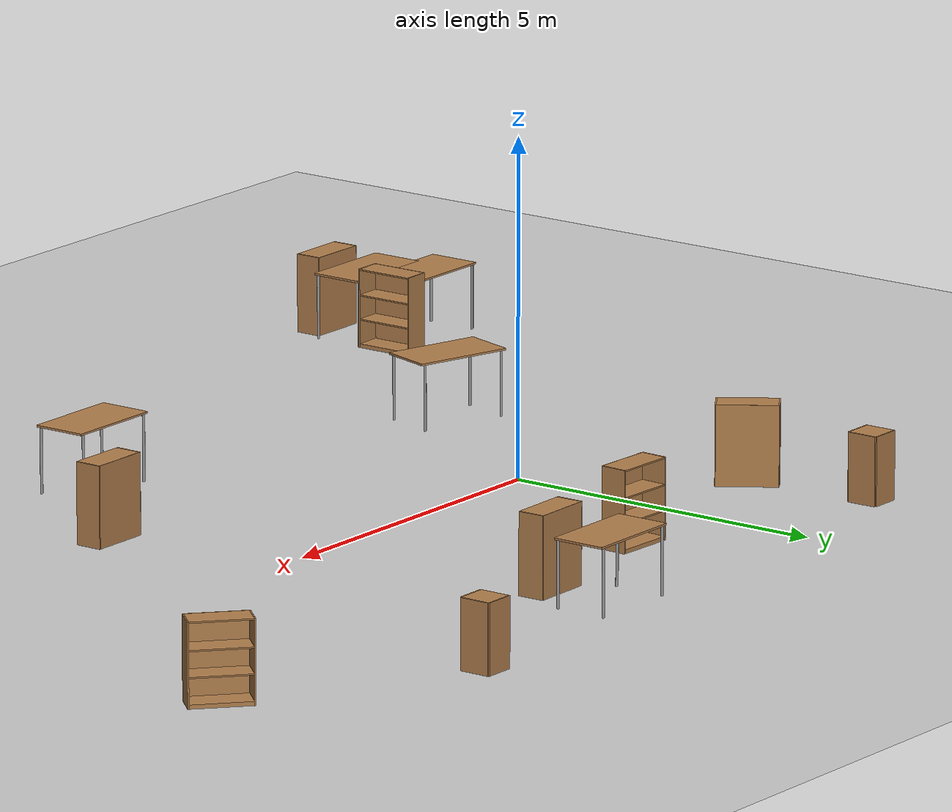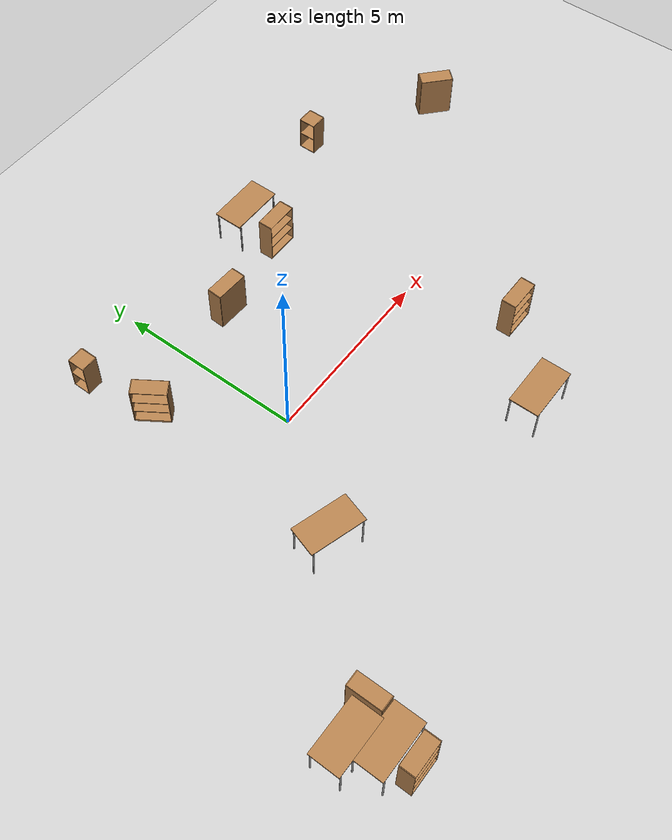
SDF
<sdf version="1.6">
 <world name="default">
  <light name="sun" type="directional">
   <cast_shadows>0</cast_shadows>
   <pose>0 0 10 0 -0 0</pose>
   <diffuse>0.8 0.8 0.8 1</diffuse>
   <specular>0.1 0.1 0.1 1</specular>
   <attenuation>
    <range>1000</range>
    <constant>0.9</constant>
    <linear>0.01</linear>
    <quadratic>0.001</quadratic>
   </attenuation>
   <direction>-0.5 0.5 -1</direction>
  </light>
  <model name="ground_plane">
   <static>1</static>
   <link name="link">
    <collision name="collision">
     <geometry><plane><normal>0 0 1</normal><size>100 100</size></plane></geometry>
     <surface><friction><ode><mu>100</mu><mu2>50</mu2></ode></friction></surface>
    </collision>
    <visual name="visual">
     <cast_shadows>0</cast_shadows>
     <geometry><plane><normal>0 0 1</normal><size>100 100</size></plane></geometry>
     <material>
      <script><uri>file://media/materials/scripts/gazebo.material</uri><name>Gazebo/Grey</name></script>
     </material>
    </visual>
   </link>
  </model>
  <gravity>0 0 -9.8</gravity>
  <magnetic_field>6e-06 2.3e-05 -4.2e-05</magnetic_field>
  <atmosphere type="adiabatic"/>
  <physics name="default_physics" default="0" type="ode">
   <max_step_size>0.001</max_step_size>
   <real_time_factor>1</real_time_factor>
   <real_time_update_rate>1000</real_time_update_rate>
  </physics>
  <scene><ambient>0.4 0.4 0.4 1</ambient><background>0.7 0.7 0.7 1</background><shadows>1</shadows></scene>
  <spherical_coordinates>
   <surface_model>EARTH_WGS84</surface_model>
   <latitude_deg>0</latitude_deg>
   <longitude_deg>0</longitude_deg>
   <elevation>0</elevation>
   <heading_deg>0</heading_deg>
  </spherical_coordinates>
  <model name="cabinet">
   <static>1</static>
   <link name="cabinet_bottom_plate">
    <inertial>
     <pose>0 0 -1 0 -0 0</pose>
     <inertia><ixx>2.05</ixx><ixy>0</ixy><ixz>0</ixz><iyy>2.05</iyy><iyz>0</iyz><izz>2.05</izz></inertia>
     <mass>25</mass>
    </inertial>
    <collision name="cabinet_bottom_plate_geom">
     <pose>0 0 0.01 0 -0 0</pose>
     <geometry><box><size>0.45 0.45 0.02</size></box></geometry>
    </collision>
    <visual name="cabinet_bottom_plate_geom_visual">
     <pose>0 0 0.01 0 -0 0</pose>
     <geometry><box><size>0.45 0.45 0.02</size></box></geometry>
     <material>
      <script><uri>file://media/materials/scripts/gazebo.material</uri><name>Gazebo/Wood</name></script>
     </material>
    </visual>
    <collision name="cabinet_bottom_plate_geom_cabinet_back_plate">
     <pose>0.235 0 0.51 0 -0 0</pose>
     <geometry><box><size>0.02 0.45 1.02</size></box></geometry>
    </collision>
    <visual name="cabinet_bottom_plate_geom_cabinet_back_plate_visual">
     <pose>0.235 0 0.51 0 -0 0</pose>
     <geometry><box><size>0.02 0.45 1.02</size></box></geometry>
     <material>
      <script><uri>file://media/materials/scripts/gazebo.material</uri><name>Gazebo/Wood</name></script>
     </material>
    </visual>
    <collision name="cabinet_bottom_plate_geom_cabinet_left_plate">
     <pose>0 0.235 0.51 0 -0 0</pose>
     <geometry><box><size>0.45 0.02 1.02</size></box></geometry>
    </collision>
    <visual name="cabinet_bottom_plate_geom_cabinet_left_plate_visual">
     <pose>0 0.235 0.51 0 -0 0</pose>
     <geometry><box><size>0.45 0.02 1.02</size></box></geometry>
     <material>
      <script><uri>file://media/materials/scripts/gazebo.material</uri><name>Gazebo/Wood</name></script>
     </material>
    </visual>
    <collision name="cabinet_bottom_plate_geom_cabinet_middle_plate">
     <pose>0 0 0.51 0 -0 0</pose>
     <geometry><box><size>0.45 0.45 0.02</size></box></geometry>
    </collision>
    <visual name="cabinet_bottom_plate_geom_cabinet_middle_plate_visual">
     <pose>0 0 0.51 0 -0 0</pose>
     <geometry><box><size>0.45 0.45 0.02</size></box></geometry>
     <material>
      <script><uri>file://media/materials/scripts/gazebo.material</uri><name>Gazebo/Wood</name></script>
     </material>
    </visual>
    <collision name="cabinet_bottom_plate_geom_cabinet_right_plate">
     <pose>0 -0.235 0.51 0 -0 0</pose>
     <geometry><box><size>0.45 0.02 1.02</size></box></geometry>
    </collision>
    <visual name="cabinet_bottom_plate_geom_cabinet_right_plate_visual">
     <pose>0 -0.235 0.51 0 -0 0</pose>
     <geometry><box><size>0.45 0.02 1.02</size></box></geometry>
     <material>
      <script><uri>file://media/materials/scripts/gazebo.material</uri><name>Gazebo/Wood</name></script>
     </material>
    </visual>
    <collision name="cabinet_bottom_plate_geom_cabinet_top_plate">
     <pose>0 0 1.01 0 -0 0</pose>
     <geometry><box><size>0.45 0.45 0.02</size></box></geometry>
    </collision>
    <visual name="cabinet_bottom_plate_geom_cabinet_top_plate_visual">
     <pose>0 0 1.01 0 -0 0</pose>
     <geometry><box><size>0.45 0.45 0.02</size></box></geometry>
     <material>
      <script><uri>file://media/materials/scripts/gazebo.material</uri><name>Gazebo/Wood</name></script>
     </material>
    </visual>
   </link>
   <pose>-2.09022 4.62939 0 0 -0 0</pose>
  </model>
  <model name="bookshelf">
   <static>1</static>
   <link name="link">
    <inertial><mass>1</mass></inertial>
    <collision name="back">
     <pose>0 0.005 0.6 0 -0 0</pose>
     <geometry><box><size>0.9 0.01 1.2</size></box></geometry>
    </collision>
    <visual name="visual1">
     <pose>0 0.005 0.6 0 -0 0</pose>
     <geometry><box><size>0.9 0.01 1.2</size></box></geometry>
     <material>
      <script><uri>file://media/materials/scripts/gazebo.material</uri><name>Gazebo/Wood</name></script>
     </material>
    </visual>
    <collision name="left_side">
     <pose>0.45 -0.195 0.6 0 -0 0</pose>
     <geometry><box><size>0.02 0.4 1.2</size></box></geometry>
    </collision>
    <visual name="visual2">
     <pose>0.45 -0.195 0.6 0 -0 0</pose>
     <geometry><box><size>0.02 0.4 1.2</size></box></geometry>
     <material>
      <script><uri>file://media/materials/scripts/gazebo.material</uri><name>Gazebo/Wood</name></script>
     </material>
    </visual>
    <collision name="right_side">
     <pose>-0.45 -0.195 0.6 0 -0 0</pose>
     <geometry><box><size>0.02 0.4 1.2</size></box></geometry>
    </collision>
    <visual name="visual3">
     <pose>-0.45 -0.195 0.6 0 -0 0</pose>
     <geometry><box><size>0.02 0.4 1.2</size></box></geometry>
     <material>
      <script><uri>file://media/materials/scripts/gazebo.material</uri><name>Gazebo/Wood</name></script>
     </material>
    </visual>
    <collision name="bottom">
     <pose>0 -0.195 0.03 0 -0 0</pose>
     <geometry><box><size>0.88 0.4 0.06</size></box></geometry>
    </collision>
    <visual name="visual4">
     <pose>0 -0.195 0.03 0 -0 0</pose>
     <geometry><box><size>0.88 0.4 0.06</size></box></geometry>
     <material>
      <script><uri>file://media/materials/scripts/gazebo.material</uri><name>Gazebo/Wood</name></script>
     </material>
    </visual>
    <collision name="top">
     <pose>0 -0.195 1.19 0 -0 0</pose>
     <geometry><box><size>0.88 0.4 0.02</size></box></geometry>
    </collision>
    <visual name="visual5">
     <pose>0 -0.195 1.19 0 -0 0</pose>
     <geometry><box><size>0.88 0.4 0.02</size></box></geometry>
     <material>
      <script><uri>file://media/materials/scripts/gazebo.material</uri><name>Gazebo/Wood</name></script>
     </material>
    </visual>
    <collision name="low_shelf">
     <pose>0 -0.195 0.43 0 -0 0</pose>
     <geometry><box><size>0.88 0.4 0.02</size></box></geometry>
    </collision>
    <visual name="visual6">
     <pose>0 -0.195 0.43 0 -0 0</pose>
     <geometry><box><size>0.88 0.4 0.02</size></box></geometry>
     <material>
      <script><uri>file://media/materials/scripts/gazebo.material</uri><name>Gazebo/Wood</name></script>
     </material>
    </visual>
    <collision name="high_shelf">
     <pose>0 -0.195 0.8 0 -0 0</pose>
     <geometry><box><size>0.88 0.4 0.02</size></box></geometry>
    </collision>
    <visual name="visual7">
     <pose>0 -0.195 0.8 0 -0 0</pose>
     <geometry><box><size>0.88 0.4 0.02</size></box></geometry>
     <material>
      <script><uri>file://media/materials/scripts/gazebo.material</uri><name>Gazebo/Wood</name></script>
     </material>
    </visual>
   </link>
   <pose>5.88793 -2.5165 0 0 -0 0</pose>
  </model>
  <model name="bookshelf_0">
   <static>1</static>
   <link name="link">
    <inertial><mass>1</mass></inertial>
    <collision name="back">
     <pose>0 0.005 0.6 0 -0 0</pose>
     <geometry><box><size>0.9 0.01 1.2</size></box></geometry>
    </collision>
    <visual name="visual1">
     <pose>0 0.005 0.6 0 -0 0</pose>
     <geometry><box><size>0.9 0.01 1.2</size></box></geometry>
     <material>
      <script><uri>file://media/materials/scripts/gazebo.material</uri><name>Gazebo/Wood</name></script>
     </material>
    </visual>
    <collision name="left_side">
     <pose>0.45 -0.195 0.6 0 -0 0</pose>
     <geometry><box><size>0.02 0.4 1.2</size></box></geometry>
    </collision>
    <visual name="visual2">
     <pose>0.45 -0.195 0.6 0 -0 0</pose>
     <geometry><box><size>0.02 0.4 1.2</size></box></geometry>
     <material>
      <script><uri>file://media/materials/scripts/gazebo.material</uri><name>Gazebo/Wood</name></script>
     </material>
    </visual>
    <collision name="right_side">
     <pose>-0.45 -0.195 0.6 0 -0 0</pose>
     <geometry><box><size>0.02 0.4 1.2</size></box></geometry>
    </collision>
    <visual name="visual3">
     <pose>-0.45 -0.195 0.6 0 -0 0</pose>
     <geometry><box><size>0.02 0.4 1.2</size></box></geometry>
     <material>
      <script><uri>file://media/materials/scripts/gazebo.material</uri><name>Gazebo/Wood</name></script>
     </material>
    </visual>
    <collision name="bottom">
     <pose>0 -0.195 0.03 0 -0 0</pose>
     <geometry><box><size>0.88 0.4 0.06</size></box></geometry>
    </collision>
    <visual name="visual4">
     <pose>0 -0.195 0.03 0 -0 0</pose>
     <geometry><box><size>0.88 0.4 0.06</size></box></geometry>
     <material>
      <script><uri>file://media/materials/scripts/gazebo.material</uri><name>Gazebo/Wood</name></script>
     </material>
    </visual>
    <collision name="top">
     <pose>0 -0.195 1.19 0 -0 0</pose>
     <geometry><box><size>0.88 0.4 0.02</size></box></geometry>
    </collision>
    <visual name="visual5">
     <pose>0 -0.195 1.19 0 -0 0</pose>
     <geometry><box><size>0.88 0.4 0.02</size></box></geometry>
     <material>
      <script><uri>file://media/materials/scripts/gazebo.material</uri><name>Gazebo/Wood</name></script>
     </material>
    </visual>
    <collision name="low_shelf">
     <pose>0 -0.195 0.43 0 -0 0</pose>
     <geometry><box><size>0.88 0.4 0.02</size></box></geometry>
    </collision>
    <visual name="visual6">
     <pose>0 -0.195 0.43 0 -0 0</pose>
     <geometry><box><size>0.88 0.4 0.02</size></box></geometry>
     <material>
      <script><uri>file://media/materials/scripts/gazebo.material</uri><name>Gazebo/Wood</name></script>
     </material>
    </visual>
    <collision name="high_shelf">
     <pose>0 -0.195 0.8 0 -0 0</pose>
     <geometry><box><size>0.88 0.4 0.02</size></box></geometry>
    </collision>
    <visual name="visual7">
     <pose>0 -0.195 0.8 0 -0 0</pose>
     <geometry><box><size>0.88 0.4 0.02</size></box></geometry>
     <material>
      <script><uri>file://media/materials/scripts/gazebo.material</uri><name>Gazebo/Wood</name></script>
     </material>
    </visual>
   </link>
   <pose>10.9908 3.18056 0 0 -0 2.40643</pose>
  </model>
  <model name="cabinet_clone">
   <static>1</static>
   <link name="cabinet_bottom_plate">
    <inertial>
     <pose>0 0 -1 0 -0 0</pose>
     <inertia><ixx>2.05</ixx><ixy>0</ixy><ixz>0</ixz><iyy>2.05</iyy><iyz>0</iyz><izz>2.05</izz></inertia>
     <mass>25</mass>
    </inertial>
    <collision name="cabinet_bottom_plate_geom">
     <pose>0 0 0.01 0 -0 0</pose>
     <geometry><box><size>0.45 0.45 0.02</size></box></geometry>
    </collision>
    <visual name="cabinet_bottom_plate_geom_visual">
     <pose>0 0 0.01 0 -0 0</pose>
     <geometry><box><size>0.45 0.45 0.02</size></box></geometry>
     <material>
      <script><uri>file://media/materials/scripts/gazebo.material</uri><name>Gazebo/Wood</name></script>
     </material>
    </visual>
    <collision name="cabinet_bottom_plate_geom_cabinet_back_plate">
     <pose>0.235 0 0.51 0 -0 0</pose>
     <geometry><box><size>0.02 0.45 1.02</size></box></geometry>
    </collision>
    <visual name="cabinet_bottom_plate_geom_cabinet_back_plate_visual">
     <pose>0.235 0 0.51 0 -0 0</pose>
     <geometry><box><size>0.02 0.45 1.02</size></box></geometry>
     <material>
      <script><uri>file://media/materials/scripts/gazebo.material</uri><name>Gazebo/Wood</name></script>
     </material>
    </visual>
    <collision name="cabinet_bottom_plate_geom_cabinet_left_plate">
     <pose>0 0.235 0.51 0 -0 0</pose>
     <geometry><box><size>0.45 0.02 1.02</size></box></geometry>
    </collision>
    <visual name="cabinet_bottom_plate_geom_cabinet_left_plate_visual">
     <pose>0 0.235 0.51 0 -0 0</pose>
     <geometry><box><size>0.45 0.02 1.02</size></box></geometry>
     <material>
      <script><uri>file://media/materials/scripts/gazebo.material</uri><name>Gazebo/Wood</name></script>
     </material>
    </visual>
    <collision name="cabinet_bottom_plate_geom_cabinet_middle_plate">
     <pose>0 0 0.51 0 -0 0</pose>
     <geometry><box><size>0.45 0.45 0.02</size></box></geometry>
    </collision>
    <visual name="cabinet_bottom_plate_geom_cabinet_middle_plate_visual">
     <pose>0 0 0.51 0 -0 0</pose>
     <geometry><box><size>0.45 0.45 0.02</size></box></geometry>
     <material>
      <script><uri>file://media/materials/scripts/gazebo.material</uri><name>Gazebo/Wood</name></script>
     </material>
    </visual>
    <collision name="cabinet_bottom_plate_geom_cabinet_right_plate">
     <pose>0 -0.235 0.51 0 -0 0</pose>
     <geometry><box><size>0.45 0.02 1.02</size></box></geometry>
    </collision>
    <visual name="cabinet_bottom_plate_geom_cabinet_right_plate_visual">
     <pose>0 -0.235 0.51 0 -0 0</pose>
     <geometry><box><size>0.45 0.02 1.02</size></box></geometry>
     <material>
      <script><uri>file://media/materials/scripts/gazebo.material</uri><name>Gazebo/Wood</name></script>
     </material>
    </visual>
    <collision name="cabinet_bottom_plate_geom_cabinet_top_plate">
     <pose>0 0 1.01 0 -0 0</pose>
     <geometry><box><size>0.45 0.45 0.02</size></box></geometry>
    </collision>
    <visual name="cabinet_bottom_plate_geom_cabinet_top_plate_visual">
     <pose>0 0 1.01 0 -0 0</pose>
     <geometry><box><size>0.45 0.45 0.02</size></box></geometry>
     <material>
      <script><uri>file://media/materials/scripts/gazebo.material</uri><name>Gazebo/Wood</name></script>
     </material>
    </visual>
   </link>
   <pose>7.77888 5.21047 0 0 -0 0</pose>
  </model>
  <model name="table_1_clone">
   <static>1</static>
   <link name="link">
    <collision name="surface">
     <pose>0 0 1 0 -0 0</pose>
     <geometry><box><size>1.5 0.8 0.03</size></box></geometry>
     <surface><friction><ode><mu>0.6</mu><mu2>0.6</mu2></ode></friction></surface>
    </collision>
    <visual name="visual1">
     <pose>0 0 1 0 -0 0</pose>
     <geometry><box><size>1.5 0.8 0.03</size></box></geometry>
     <material>
      <script><uri>file://media/materials/scripts/gazebo.material</uri><name>Gazebo/Wood</name></script>
     </material>
    </visual>
    <collision name="front_left_leg">
     <pose>0.68 0.38 0.5 0 -0 0</pose>
     <geometry><cylinder><radius>0.02</radius><length>1</length></cylinder></geometry>
    </collision>
    <visual name="front_left_leg">
     <pose>0.68 0.38 0.5 0 -0 0</pose>
     <geometry><cylinder><radius>0.02</radius><length>1</length></cylinder></geometry>
     <material>
      <script><uri>file://media/materials/scripts/gazebo.material</uri><name>Gazebo/Grey</name></script>
     </material>
    </visual>
    <collision name="front_right_leg">
     <pose>0.68 -0.38 0.5 0 -0 0</pose>
     <geometry><cylinder><radius>0.02</radius><length>1</length></cylinder></geometry>
    </collision>
    <visual name="front_right_leg">
     <pose>0.68 -0.38 0.5 0 -0 0</pose>
     <geometry><cylinder><radius>0.02</radius><length>1</length></cylinder></geometry>
     <material>
      <script><uri>file://media/materials/scripts/gazebo.material</uri><name>Gazebo/Grey</name></script>
     </material>
    </visual>
    <collision name="back_right_leg">
     <pose>-0.68 -0.38 0.5 0 -0 0</pose>
     <geometry><cylinder><radius>0.02</radius><length>1</length></cylinder></geometry>
    </collision>
    <visual name="back_right_leg">
     <pose>-0.68 -0.38 0.5 0 -0 0</pose>
     <geometry><cylinder><radius>0.02</radius><length>1</length></cylinder></geometry>
     <material>
      <script><uri>file://media/materials/scripts/gazebo.material</uri><name>Gazebo/Grey</name></script>
     </material>
    </visual>
    <collision name="back_left_leg">
     <pose>-0.68 0.38 0.5 0 -0 0</pose>
     <geometry><cylinder><radius>0.02</radius><length>1</length></cylinder></geometry>
    </collision>
    <visual name="back_left_leg">
     <pose>-0.68 0.38 0.5 0 -0 0</pose>
     <geometry><cylinder><radius>0.02</radius><length>1</length></cylinder></geometry>
     <material>
      <script><uri>file://media/materials/scripts/gazebo.material</uri><name>Gazebo/Grey</name></script>
     </material>
    </visual>
   </link>
   <pose>4.19696 4.66615 0 0 -0 0</pose>
  </model>
  <model name="table_1_clone_0">
   <static>1</static>
   <link name="link">
    <collision name="surface">
     <pose>0 0 1 0 -0 0</pose>
     <geometry><box><size>1.5 0.8 0.03</size></box></geometry>
     <surface><friction><ode><mu>0.6</mu><mu2>0.6</mu2></ode></friction></surface>
    </collision>
    <visual name="visual1">
     <pose>0 0 1 0 -0 0</pose>
     <geometry><box><size>1.5 0.8 0.03</size></box></geometry>
     <material>
      <script><uri>file://media/materials/scripts/gazebo.material</uri><name>Gazebo/Wood</name></script>
     </material>
    </visual>
    <collision name="front_left_leg">
     <pose>0.68 0.38 0.5 0 -0 0</pose>
     <geometry><cylinder><radius>0.02</radius><length>1</length></cylinder></geometry>
    </collision>
    <visual name="front_left_leg">
     <pose>0.68 0.38 0.5 0 -0 0</pose>
     <geometry><cylinder><radius>0.02</radius><length>1</length></cylinder></geometry>
     <material>
      <script><uri>file://media/materials/scripts/gazebo.material</uri><name>Gazebo/Grey</name></script>
     </material>
    </visual>
    <collision name="front_right_leg">
     <pose>0.68 -0.38 0.5 0 -0 0</pose>
     <geometry><cylinder><radius>0.02</radius><length>1</length></cylinder></geometry>
    </collision>
    <visual name="front_right_leg">
     <pose>0.68 -0.38 0.5 0 -0 0</pose>
     <geometry><cylinder><radius>0.02</radius><length>1</length></cylinder></geometry>
     <material>
      <script><uri>file://media/materials/scripts/gazebo.material</uri><name>Gazebo/Grey</name></script>
     </material>
    </visual>
    <collision name="back_right_leg">
     <pose>-0.68 -0.38 0.5 0 -0 0</pose>
     <geometry><cylinder><radius>0.02</radius><length>1</length></cylinder></geometry>
    </collision>
    <visual name="back_right_leg">
     <pose>-0.68 -0.38 0.5 0 -0 0</pose>
     <geometry><cylinder><radius>0.02</radius><length>1</length></cylinder></geometry>
     <material>
      <script><uri>file://media/materials/scripts/gazebo.material</uri><name>Gazebo/Grey</name></script>
     </material>
    </visual>
    <collision name="back_left_leg">
     <pose>-0.68 0.38 0.5 0 -0 0</pose>
     <geometry><cylinder><radius>0.02</radius><length>1</length></cylinder></geometry>
    </collision>
    <visual name="back_left_leg">
     <pose>-0.68 0.38 0.5 0 -0 0</pose>
     <geometry><cylinder><radius>0.02</radius><length>1</length></cylinder></geometry>
     <material>
      <script><uri>file://media/materials/scripts/gazebo.material</uri><name>Gazebo/Grey</name></script>
     </material>
    </visual>
   </link>
   <pose>-2.02779 -2.76779 0 0 0 -0.296308</pose>
  </model>
  <model name="table_1_clone_clone_1">
   <static>1</static>
   <link name="link">
    <collision name="surface">
     <pose>0 0 1 0 -0 0</pose>
     <geometry><box><size>1.5 0.8 0.03</size></box></geometry>
     <surface><friction><ode><mu>0.6</mu><mu2>0.6</mu2></ode></friction></surface>
    </collision>
    <visual name="visual1">
     <pose>0 0 1 0 -0 0</pose>
     <geometry><box><size>1.5 0.8 0.03</size></box></geometry>
     <material>
      <script><uri>file://media/materials/scripts/gazebo.material</uri><name>Gazebo/Wood</name></script>
     </material>
    </visual>
    <collision name="front_left_leg">
     <pose>0.68 0.38 0.5 0 -0 0</pose>
     <geometry><cylinder><radius>0.02</radius><length>1</length></cylinder></geometry>
    </collision>
    <visual name="front_left_leg">
     <pose>0.68 0.38 0.5 0 -0 0</pose>
     <geometry><cylinder><radius>0.02</radius><length>1</length></cylinder></geometry>
     <material>
      <script><uri>file://media/materials/scripts/gazebo.material</uri><name>Gazebo/Grey</name></script>
     </material>
    </visual>
    <collision name="front_right_leg">
     <pose>0.68 -0.38 0.5 0 -0 0</pose>
     <geometry><cylinder><radius>0.02</radius><length>1</length></cylinder></geometry>
    </collision>
    <visual name="front_right_leg">
     <pose>0.68 -0.38 0.5 0 -0 0</pose>
     <geometry><cylinder><radius>0.02</radius><length>1</length></cylinder></geometry>
     <material>
      <script><uri>file://media/materials/scripts/gazebo.material</uri><name>Gazebo/Grey</name></script>
     </material>
    </visual>
    <collision name="back_right_leg">
     <pose>-0.68 -0.38 0.5 0 -0 0</pose>
     <geometry><cylinder><radius>0.02</radius><length>1</length></cylinder></geometry>
    </collision>
    <visual name="back_right_leg">
     <pose>-0.68 -0.38 0.5 0 -0 0</pose>
     <geometry><cylinder><radius>0.02</radius><length>1</length></cylinder></geometry>
     <material>
      <script><uri>file://media/materials/scripts/gazebo.material</uri><name>Gazebo/Grey</name></script>
     </material>
    </visual>
    <collision name="back_left_leg">
     <pose>-0.68 0.38 0.5 0 -0 0</pose>
     <geometry><cylinder><radius>0.02</radius><length>1</length></cylinder></geometry>
    </collision>
    <visual name="back_left_leg">
     <pose>-0.68 0.38 0.5 0 -0 0</pose>
     <geometry><cylinder><radius>0.02</radius><length>1</length></cylinder></geometry>
     <material>
      <script><uri>file://media/materials/scripts/gazebo.material</uri><name>Gazebo/Grey</name></script>
     </material>
    </visual>
   </link>
   <pose>-5.57466 -5.86249 0 0 -0 0</pose>
  </model>
  <model name="table_1_clone_clone_2">
   <static>1</static>
   <link name="link">
    <collision name="surface">
     <pose>0 0 1 0 -0 0</pose>
     <geometry><box><size>1.5 0.8 0.03</size></box></geometry>
     <surface><friction><ode><mu>0.6</mu><mu2>0.6</mu2></ode></friction></surface>
    </collision>
    <visual name="visual1">
     <pose>0 0 1 0 -0 0</pose>
     <geometry><box><size>1.5 0.8 0.03</size></box></geometry>
     <material>
      <script><uri>file://media/materials/scripts/gazebo.material</uri><name>Gazebo/Wood</name></script>
     </material>
    </visual>
    <collision name="front_left_leg">
     <pose>0.68 0.38 0.5 0 -0 0</pose>
     <geometry><cylinder><radius>0.02</radius><length>1</length></cylinder></geometry>
    </collision>
    <visual name="front_left_leg">
     <pose>0.68 0.38 0.5 0 -0 0</pose>
     <geometry><cylinder><radius>0.02</radius><length>1</length></cylinder></geometry>
     <material>
      <script><uri>file://media/materials/scripts/gazebo.material</uri><name>Gazebo/Grey</name></script>
     </material>
    </visual>
    <collision name="front_right_leg">
     <pose>0.68 -0.38 0.5 0 -0 0</pose>
     <geometry><cylinder><radius>0.02</radius><length>1</length></cylinder></geometry>
    </collision>
    <visual name="front_right_leg">
     <pose>0.68 -0.38 0.5 0 -0 0</pose>
     <geometry><cylinder><radius>0.02</radius><length>1</length></cylinder></geometry>
     <material>
      <script><uri>file://media/materials/scripts/gazebo.material</uri><name>Gazebo/Grey</name></script>
     </material>
    </visual>
    <collision name="back_right_leg">
     <pose>-0.68 -0.38 0.5 0 -0 0</pose>
     <geometry><cylinder><radius>0.02</radius><length>1</length></cylinder></geometry>
    </collision>
    <visual name="back_right_leg">
     <pose>-0.68 -0.38 0.5 0 -0 0</pose>
     <geometry><cylinder><radius>0.02</radius><length>1</length></cylinder></geometry>
     <material>
      <script><uri>file://media/materials/scripts/gazebo.material</uri><name>Gazebo/Grey</name></script>
     </material>
    </visual>
    <collision name="back_left_leg">
     <pose>-0.68 0.38 0.5 0 -0 0</pose>
     <geometry><cylinder><radius>0.02</radius><length>1</length></cylinder></geometry>
    </collision>
    <visual name="back_left_leg">
     <pose>-0.68 0.38 0.5 0 -0 0</pose>
     <geometry><cylinder><radius>0.02</radius><length>1</length></cylinder></geometry>
     <material>
      <script><uri>file://media/materials/scripts/gazebo.material</uri><name>Gazebo/Grey</name></script>
     </material>
    </visual>
   </link>
   <pose>-5.12777 -6.5965 0 0 -0 0</pose>
  </model>
  <model name="table_1_clone_clone_3">
   <static>1</static>
   <link name="link">
    <collision name="surface">
     <pose>0 0 1 0 -0 0</pose>
     <geometry><box><size>1.5 0.8 0.03</size></box></geometry>
     <surface><friction><ode><mu>0.6</mu><mu2>0.6</mu2></ode></friction></surface>
    </collision>
    <visual name="visual1">
     <pose>0 0 1 0 -0 0</pose>
     <geometry><box><size>1.5 0.8 0.03</size></box></geometry>
     <material>
      <script><uri>file://media/materials/scripts/gazebo.material</uri><name>Gazebo/Wood</name></script>
     </material>
    </visual>
    <collision name="front_left_leg">
     <pose>0.68 0.38 0.5 0 -0 0</pose>
     <geometry><cylinder><radius>0.02</radius><length>1</length></cylinder></geometry>
    </collision>
    <visual name="front_left_leg">
     <pose>0.68 0.38 0.5 0 -0 0</pose>
     <geometry><cylinder><radius>0.02</radius><length>1</length></cylinder></geometry>
     <material>
      <script><uri>file://media/materials/scripts/gazebo.material</uri><name>Gazebo/Grey</name></script>
     </material>
    </visual>
    <collision name="front_right_leg">
     <pose>0.68 -0.38 0.5 0 -0 0</pose>
     <geometry><cylinder><radius>0.02</radius><length>1</length></cylinder></geometry>
    </collision>
    <visual name="front_right_leg">
     <pose>0.68 -0.38 0.5 0 -0 0</pose>
     <geometry><cylinder><radius>0.02</radius><length>1</length></cylinder></geometry>
     <material>
      <script><uri>file://media/materials/scripts/gazebo.material</uri><name>Gazebo/Grey</name></script>
     </material>
    </visual>
    <collision name="back_right_leg">
     <pose>-0.68 -0.38 0.5 0 -0 0</pose>
     <geometry><cylinder><radius>0.02</radius><length>1</length></cylinder></geometry>
    </collision>
    <visual name="back_right_leg">
     <pose>-0.68 -0.38 0.5 0 -0 0</pose>
     <geometry><cylinder><radius>0.02</radius><length>1</length></cylinder></geometry>
     <material>
      <script><uri>file://media/materials/scripts/gazebo.material</uri><name>Gazebo/Grey</name></script>
     </material>
    </visual>
    <collision name="back_left_leg">
     <pose>-0.68 0.38 0.5 0 -0 0</pose>
     <geometry><cylinder><radius>0.02</radius><length>1</length></cylinder></geometry>
    </collision>
    <visual name="back_left_leg">
     <pose>-0.68 0.38 0.5 0 -0 0</pose>
     <geometry><cylinder><radius>0.02</radius><length>1</length></cylinder></geometry>
     <material>
      <script><uri>file://media/materials/scripts/gazebo.material</uri><name>Gazebo/Grey</name></script>
     </material>
    </visual>
   </link>
   <pose>3.92435 -4.56831 0 0 -0 0</pose>
  </model>
  <model name="bookshelf_3">
   <static>1</static>
   <link name="link">
    <inertial><mass>1</mass></inertial>
    <collision name="back">
     <pose>0 0.005 0.6 0 -0 0</pose>
     <geometry><box><size>0.9 0.01 1.2</size></box></geometry>
    </collision>
    <visual name="visual1">
     <pose>0 0.005 0.6 0 -0 0</pose>
     <geometry><box><size>0.9 0.01 1.2</size></box></geometry>
     <material>
      <script><uri>file://media/materials/scripts/gazebo.material</uri><name>Gazebo/Wood</name></script>
     </material>
    </visual>
    <collision name="left_side">
     <pose>0.45 -0.195 0.6 0 -0 0</pose>
     <geometry><box><size>0.02 0.4 1.2</size></box></geometry>
    </collision>
    <visual name="visual2">
     <pose>0.45 -0.195 0.6 0 -0 0</pose>
     <geometry><box><size>0.02 0.4 1.2</size></box></geometry>
     <material>
      <script><uri>file://media/materials/scripts/gazebo.material</uri><name>Gazebo/Wood</name></script>
     </material>
    </visual>
    <collision name="right_side">
     <pose>-0.45 -0.195 0.6 0 -0 0</pose>
     <geometry><box><size>0.02 0.4 1.2</size></box></geometry>
    </collision>
    <visual name="visual3">
     <pose>-0.45 -0.195 0.6 0 -0 0</pose>
     <geometry><box><size>0.02 0.4 1.2</size></box></geometry>
     <material>
      <script><uri>file://media/materials/scripts/gazebo.material</uri><name>Gazebo/Wood</name></script>
     </material>
    </visual>
    <collision name="bottom">
     <pose>0 -0.195 0.03 0 -0 0</pose>
     <geometry><box><size>0.88 0.4 0.06</size></box></geometry>
    </collision>
    <visual name="visual4">
     <pose>0 -0.195 0.03 0 -0 0</pose>
     <geometry><box><size>0.88 0.4 0.06</size></box></geometry>
     <material>
      <script><uri>file://media/materials/scripts/gazebo.material</uri><name>Gazebo/Wood</name></script>
     </material>
    </visual>
    <collision name="top">
     <pose>0 -0.195 1.19 0 -0 0</pose>
     <geometry><box><size>0.88 0.4 0.02</size></box></geometry>
    </collision>
    <visual name="visual5">
     <pose>0 -0.195 1.19 0 -0 0</pose>
     <geometry><box><size>0.88 0.4 0.02</size></box></geometry>
     <material>
      <script><uri>file://media/materials/scripts/gazebo.material</uri><name>Gazebo/Wood</name></script>
     </material>
    </visual>
    <collision name="low_shelf">
     <pose>0 -0.195 0.43 0 -0 0</pose>
     <geometry><box><size>0.88 0.4 0.02</size></box></geometry>
    </collision>
    <visual name="visual6">
     <pose>0 -0.195 0.43 0 -0 0</pose>
     <geometry><box><size>0.88 0.4 0.02</size></box></geometry>
     <material>
      <script><uri>file://media/materials/scripts/gazebo.material</uri><name>Gazebo/Wood</name></script>
     </material>
    </visual>
    <collision name="high_shelf">
     <pose>0 -0.195 0.8 0 -0 0</pose>
     <geometry><box><size>0.88 0.4 0.02</size></box></geometry>
    </collision>
    <visual name="visual7">
     <pose>0 -0.195 0.8 0 -0 0</pose>
     <geometry><box><size>0.88 0.4 0.02</size></box></geometry>
     <material>
      <script><uri>file://media/materials/scripts/gazebo.material</uri><name>Gazebo/Wood</name></script>
     </material>
    </visual>
   </link>
   <pose>1.71067 3.07173 0 0 -0 3.10204</pose>
  </model>
  <model name="bookshelf_5">
   <static>1</static>
   <link name="link">
    <inertial><mass>1</mass></inertial>
    <collision name="back">
     <pose>0 0.005 0.6 0 -0 0</pose>
     <geometry><box><size>0.9 0.01 1.2</size></box></geometry>
    </collision>
    <visual name="visual1">
     <pose>0 0.005 0.6 0 -0 0</pose>
     <geometry><box><size>0.9 0.01 1.2</size></box></geometry>
     <material>
      <script><uri>file://media/materials/scripts/gazebo.material</uri><name>Gazebo/Wood</name></script>
     </material>
    </visual>
    <collision name="left_side">
     <pose>0.45 -0.195 0.6 0 -0 0</pose>
     <geometry><box><size>0.02 0.4 1.2</size></box></geometry>
    </collision>
    <visual name="visual2">
     <pose>0.45 -0.195 0.6 0 -0 0</pose>
     <geometry><box><size>0.02 0.4 1.2</size></box></geometry>
     <material>
      <script><uri>file://media/materials/scripts/gazebo.material</uri><name>Gazebo/Wood</name></script>
     </material>
    </visual>
    <collision name="right_side">
     <pose>-0.45 -0.195 0.6 0 -0 0</pose>
     <geometry><box><size>0.02 0.4 1.2</size></box></geometry>
    </collision>
    <visual name="visual3">
     <pose>-0.45 -0.195 0.6 0 -0 0</pose>
     <geometry><box><size>0.02 0.4 1.2</size></box></geometry>
     <material>
      <script><uri>file://media/materials/scripts/gazebo.material</uri><name>Gazebo/Wood</name></script>
     </material>
    </visual>
    <collision name="bottom">
     <pose>0 -0.195 0.03 0 -0 0</pose>
     <geometry><box><size>0.88 0.4 0.06</size></box></geometry>
    </collision>
    <visual name="visual4">
     <pose>0 -0.195 0.03 0 -0 0</pose>
     <geometry><box><size>0.88 0.4 0.06</size></box></geometry>
     <material>
      <script><uri>file://media/materials/scripts/gazebo.material</uri><name>Gazebo/Wood</name></script>
     </material>
    </visual>
    <collision name="top">
     <pose>0 -0.195 1.19 0 -0 0</pose>
     <geometry><box><size>0.88 0.4 0.02</size></box></geometry>
    </collision>
    <visual name="visual5">
     <pose>0 -0.195 1.19 0 -0 0</pose>
     <geometry><box><size>0.88 0.4 0.02</size></box></geometry>
     <material>
      <script><uri>file://media/materials/scripts/gazebo.material</uri><name>Gazebo/Wood</name></script>
     </material>
    </visual>
    <collision name="low_shelf">
     <pose>0 -0.195 0.43 0 -0 0</pose>
     <geometry><box><size>0.88 0.4 0.02</size></box></geometry>
    </collision>
    <visual name="visual6">
     <pose>0 -0.195 0.43 0 -0 0</pose>
     <geometry><box><size>0.88 0.4 0.02</size></box></geometry>
     <material>
      <script><uri>file://media/materials/scripts/gazebo.material</uri><name>Gazebo/Wood</name></script>
     </material>
    </visual>
    <collision name="high_shelf">
     <pose>0 -0.195 0.8 0 -0 0</pose>
     <geometry><box><size>0.88 0.4 0.02</size></box></geometry>
    </collision>
    <visual name="visual7">
     <pose>0 -0.195 0.8 0 -0 0</pose>
     <geometry><box><size>0.88 0.4 0.02</size></box></geometry>
     <material>
      <script><uri>file://media/materials/scripts/gazebo.material</uri><name>Gazebo/Wood</name></script>
     </material>
    </visual>
   </link>
   <pose>4.23834 3.88005 0 0 -0 0.011703</pose>
  </model>
  <model name="bookshelf_6">
   <static>1</static>
   <link name="link">
    <inertial><mass>1</mass></inertial>
    <collision name="back">
     <pose>0 0.005 0.6 0 -0 0</pose>
     <geometry><box><size>0.9 0.01 1.2</size></box></geometry>
    </collision>
    <visual name="visual1">
     <pose>0 0.005 0.6 0 -0 0</pose>
     <geometry><box><size>0.9 0.01 1.2</size></box></geometry>
     <material>
      <script><uri>file://media/materials/scripts/gazebo.material</uri><name>Gazebo/Wood</name></script>
     </material>
    </visual>
    <collision name="left_side">
     <pose>0.45 -0.195 0.6 0 -0 0</pose>
     <geometry><box><size>0.02 0.4 1.2</size></box></geometry>
    </collision>
    <visual name="visual2">
     <pose>0.45 -0.195 0.6 0 -0 0</pose>
     <geometry><box><size>0.02 0.4 1.2</size></box></geometry>
     <material>
      <script><uri>file://media/materials/scripts/gazebo.material</uri><name>Gazebo/Wood</name></script>
     </material>
    </visual>
    <collision name="right_side">
     <pose>-0.45 -0.195 0.6 0 -0 0</pose>
     <geometry><box><size>0.02 0.4 1.2</size></box></geometry>
    </collision>
    <visual name="visual3">
     <pose>-0.45 -0.195 0.6 0 -0 0</pose>
     <geometry><box><size>0.02 0.4 1.2</size></box></geometry>
     <material>
      <script><uri>file://media/materials/scripts/gazebo.material</uri><name>Gazebo/Wood</name></script>
     </material>
    </visual>
    <collision name="bottom">
     <pose>0 -0.195 0.03 0 -0 0</pose>
     <geometry><box><size>0.88 0.4 0.06</size></box></geometry>
    </collision>
    <visual name="visual4">
     <pose>0 -0.195 0.03 0 -0 0</pose>
     <geometry><box><size>0.88 0.4 0.06</size></box></geometry>
     <material>
      <script><uri>file://media/materials/scripts/gazebo.material</uri><name>Gazebo/Wood</name></script>
     </material>
    </visual>
    <collision name="top">
     <pose>0 -0.195 1.19 0 -0 0</pose>
     <geometry><box><size>0.88 0.4 0.02</size></box></geometry>
    </collision>
    <visual name="visual5">
     <pose>0 -0.195 1.19 0 -0 0</pose>
     <geometry><box><size>0.88 0.4 0.02</size></box></geometry>
     <material>
      <script><uri>file://media/materials/scripts/gazebo.material</uri><name>Gazebo/Wood</name></script>
     </material>
    </visual>
    <collision name="low_shelf">
     <pose>0 -0.195 0.43 0 -0 0</pose>
     <geometry><box><size>0.88 0.4 0.02</size></box></geometry>
    </collision>
    <visual name="visual6">
     <pose>0 -0.195 0.43 0 -0 0</pose>
     <geometry><box><size>0.88 0.4 0.02</size></box></geometry>
     <material>
      <script><uri>file://media/materials/scripts/gazebo.material</uri><name>Gazebo/Wood</name></script>
     </material>
    </visual>
    <collision name="high_shelf">
     <pose>0 -0.195 0.8 0 -0 0</pose>
     <geometry><box><size>0.88 0.4 0.02</size></box></geometry>
    </collision>
    <visual name="visual7">
     <pose>0 -0.195 0.8 0 -0 0</pose>
     <geometry><box><size>0.88 0.4 0.02</size></box></geometry>
     <material>
      <script><uri>file://media/materials/scripts/gazebo.material</uri><name>Gazebo/Wood</name></script>
     </material>
    </visual>
   </link>
   <pose>-1.63352 2.8146 0 0 0 -0.980198</pose>
  </model>
  <model name="bookshelf_7">
   <static>1</static>
   <link name="link">
    <inertial><mass>1</mass></inertial>
    <collision name="back">
     <pose>0 0.005 0.6 0 -0 0</pose>
     <geometry><box><size>0.9 0.01 1.2</size></box></geometry>
    </collision>
    <visual name="visual1">
     <pose>0 0.005 0.6 0 -0 0</pose>
     <geometry><box><size>0.9 0.01 1.2</size></box></geometry>
     <material>
      <script><uri>file://media/materials/scripts/gazebo.material</uri><name>Gazebo/Wood</name></script>
     </material>
    </visual>
    <collision name="left_side">
     <pose>0.45 -0.195 0.6 0 -0 0</pose>
     <geometry><box><size>0.02 0.4 1.2</size></box></geometry>
    </collision>
    <visual name="visual2">
     <pose>0.45 -0.195 0.6 0 -0 0</pose>
     <geometry><box><size>0.02 0.4 1.2</size></box></geometry>
     <material>
      <script><uri>file://media/materials/scripts/gazebo.material</uri><name>Gazebo/Wood</name></script>
     </material>
    </visual>
    <collision name="right_side">
     <pose>-0.45 -0.195 0.6 0 -0 0</pose>
     <geometry><box><size>0.02 0.4 1.2</size></box></geometry>
    </collision>
    <visual name="visual3">
     <pose>-0.45 -0.195 0.6 0 -0 0</pose>
     <geometry><box><size>0.02 0.4 1.2</size></box></geometry>
     <material>
      <script><uri>file://media/materials/scripts/gazebo.material</uri><name>Gazebo/Wood</name></script>
     </material>
    </visual>
    <collision name="bottom">
     <pose>0 -0.195 0.03 0 -0 0</pose>
     <geometry><box><size>0.88 0.4 0.06</size></box></geometry>
    </collision>
    <visual name="visual4">
     <pose>0 -0.195 0.03 0 -0 0</pose>
     <geometry><box><size>0.88 0.4 0.06</size></box></geometry>
     <material>
      <script><uri>file://media/materials/scripts/gazebo.material</uri><name>Gazebo/Wood</name></script>
     </material>
    </visual>
    <collision name="top">
     <pose>0 -0.195 1.19 0 -0 0</pose>
     <geometry><box><size>0.88 0.4 0.02</size></box></geometry>
    </collision>
    <visual name="visual5">
     <pose>0 -0.195 1.19 0 -0 0</pose>
     <geometry><box><size>0.88 0.4 0.02</size></box></geometry>
     <material>
      <script><uri>file://media/materials/scripts/gazebo.material</uri><name>Gazebo/Wood</name></script>
     </material>
    </visual>
    <collision name="low_shelf">
     <pose>0 -0.195 0.43 0 -0 0</pose>
     <geometry><box><size>0.88 0.4 0.02</size></box></geometry>
    </collision>
    <visual name="visual6">
     <pose>0 -0.195 0.43 0 -0 0</pose>
     <geometry><box><size>0.88 0.4 0.02</size></box></geometry>
     <material>
      <script><uri>file://media/materials/scripts/gazebo.material</uri><name>Gazebo/Wood</name></script>
     </material>
    </visual>
    <collision name="high_shelf">
     <pose>0 -0.195 0.8 0 -0 0</pose>
     <geometry><box><size>0.88 0.4 0.02</size></box></geometry>
    </collision>
    <visual name="visual7">
     <pose>0 -0.195 0.8 0 -0 0</pose>
     <geometry><box><size>0.88 0.4 0.02</size></box></geometry>
     <material>
      <script><uri>file://media/materials/scripts/gazebo.material</uri><name>Gazebo/Wood</name></script>
     </material>
    </visual>
   </link>
   <pose>-4.79461 -5.73065 0 0 -0 1.57819</pose>
  </model>
  <model name="bookshelf_8">
   <static>1</static>
   <link name="link">
    <inertial><mass>1</mass></inertial>
    <collision name="back">
     <pose>0 0.005 0.6 0 -0 0</pose>
     <geometry><box><size>0.9 0.01 1.2</size></box></geometry>
    </collision>
    <visual name="visual1">
     <pose>0 0.005 0.6 0 -0 0</pose>
     <geometry><box><size>0.9 0.01 1.2</size></box></geometry>
     <material>
      <script><uri>file://media/materials/scripts/gazebo.material</uri><name>Gazebo/Wood</name></script>
     </material>
    </visual>
    <collision name="left_side">
     <pose>0.45 -0.195 0.6 0 -0 0</pose>
     <geometry><box><size>0.02 0.4 1.2</size></box></geometry>
    </collision>
    <visual name="visual2">
     <pose>0.45 -0.195 0.6 0 -0 0</pose>
     <geometry><box><size>0.02 0.4 1.2</size></box></geometry>
     <material>
      <script><uri>file://media/materials/scripts/gazebo.material</uri><name>Gazebo/Wood</name></script>
     </material>
    </visual>
    <collision name="right_side">
     <pose>-0.45 -0.195 0.6 0 -0 0</pose>
     <geometry><box><size>0.02 0.4 1.2</size></box></geometry>
    </collision>
    <visual name="visual3">
     <pose>-0.45 -0.195 0.6 0 -0 0</pose>
     <geometry><box><size>0.02 0.4 1.2</size></box></geometry>
     <material>
      <script><uri>file://media/materials/scripts/gazebo.material</uri><name>Gazebo/Wood</name></script>
     </material>
    </visual>
    <collision name="bottom">
     <pose>0 -0.195 0.03 0 -0 0</pose>
     <geometry><box><size>0.88 0.4 0.06</size></box></geometry>
    </collision>
    <visual name="visual4">
     <pose>0 -0.195 0.03 0 -0 0</pose>
     <geometry><box><size>0.88 0.4 0.06</size></box></geometry>
     <material>
      <script><uri>file://media/materials/scripts/gazebo.material</uri><name>Gazebo/Wood</name></script>
     </material>
    </visual>
    <collision name="top">
     <pose>0 -0.195 1.19 0 -0 0</pose>
     <geometry><box><size>0.88 0.4 0.02</size></box></geometry>
    </collision>
    <visual name="visual5">
     <pose>0 -0.195 1.19 0 -0 0</pose>
     <geometry><box><size>0.88 0.4 0.02</size></box></geometry>
     <material>
      <script><uri>file://media/materials/scripts/gazebo.material</uri><name>Gazebo/Wood</name></script>
     </material>
    </visual>
    <collision name="low_shelf">
     <pose>0 -0.195 0.43 0 -0 0</pose>
     <geometry><box><size>0.88 0.4 0.02</size></box></geometry>
    </collision>
    <visual name="visual6">
     <pose>0 -0.195 0.43 0 -0 0</pose>
     <geometry><box><size>0.88 0.4 0.02</size></box></geometry>
     <material>
      <script><uri>file://media/materials/scripts/gazebo.material</uri><name>Gazebo/Wood</name></script>
     </material>
    </visual>
    <collision name="high_shelf">
     <pose>0 -0.195 0.8 0 -0 0</pose>
     <geometry><box><size>0.88 0.4 0.02</size></box></geometry>
    </collision>
    <visual name="visual7">
     <pose>0 -0.195 0.8 0 -0 0</pose>
     <geometry><box><size>0.88 0.4 0.02</size></box></geometry>
     <material>
      <script><uri>file://media/materials/scripts/gazebo.material</uri><name>Gazebo/Wood</name></script>
     </material>
    </visual>
   </link>
   <pose>-5.01957 -7.06347 0 0 -0 0</pose>
  </model>
 </world>
</sdf>
